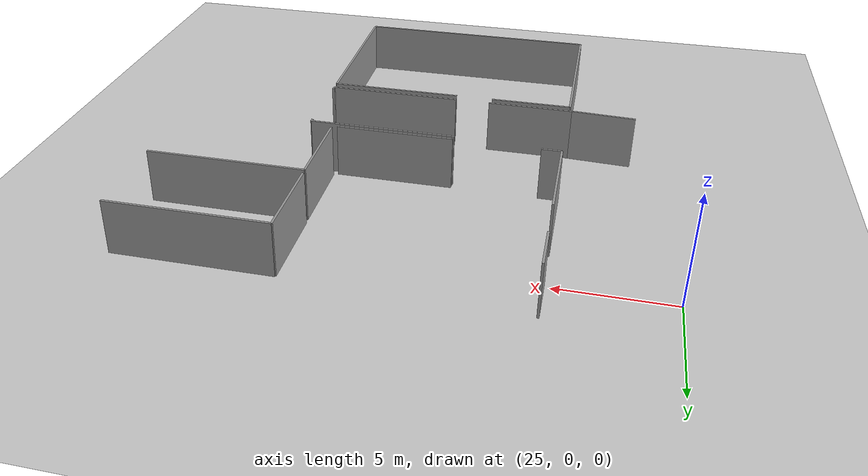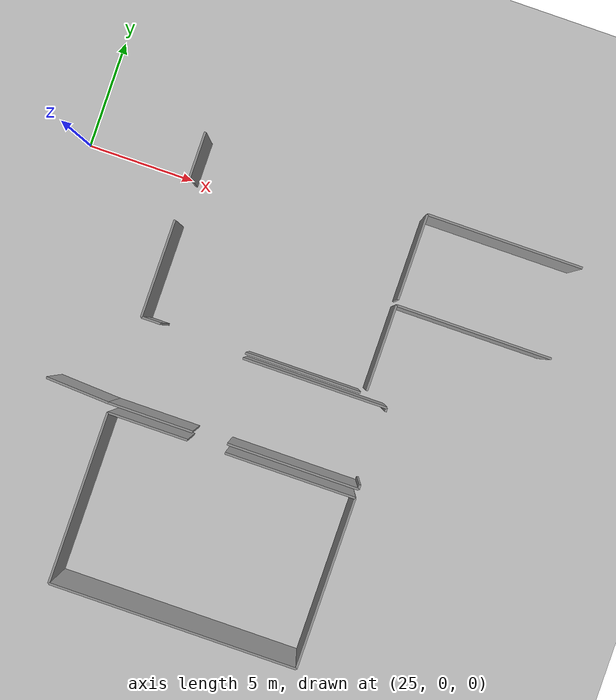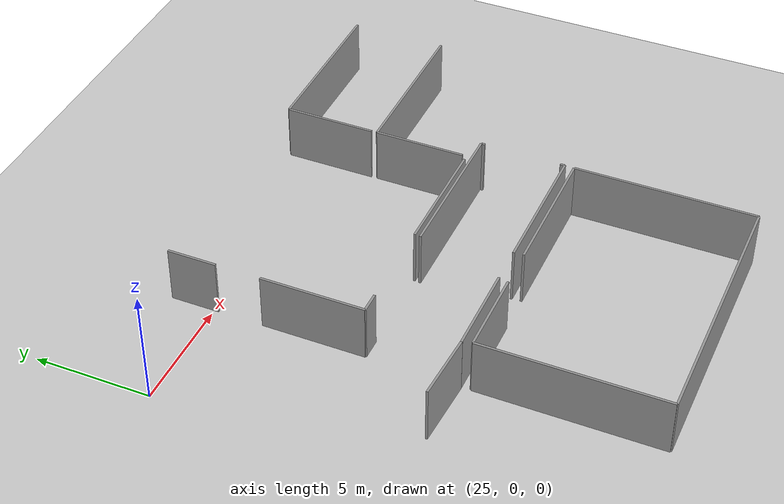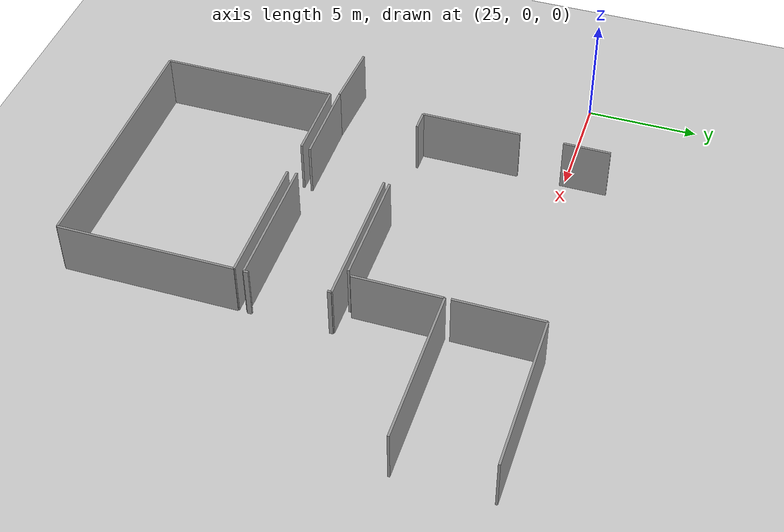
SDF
<sdf version="1.6">
 <world name="default">
  <model name="ground_plane">
   <static>1</static>
   <link name="link">
    <collision name="collision">
     <geometry><plane><normal>0 0 1</normal><size>100 100</size></plane></geometry>
     <surface><friction><ode><mu>100</mu><mu2>50</mu2></ode></friction></surface>
    </collision>
    <visual name="visual">
     <cast_shadows>0</cast_shadows>
     <geometry><plane><normal>0 0 1</normal><size>100 100</size></plane></geometry>
     <material>
      <script><uri>file://media/materials/scripts/gazebo.material</uri><name>Gazebo/Grey</name></script>
     </material>
    </visual>
   </link>
  </model>
  <model name="50041169">
   <static>1</static>
   <link name="Wall_86">
    <collision name="Wall_86_Collision">
     <geometry><box><size>6.07632056669 0.1 2.5</size></box></geometry>
     <pose>3.03816028335 0 1.25 0 0 0</pose>
    </collision>
    <visual name="Wall_86_Visual">
     <pose>3.03816028335 0 1.25 0 0 0</pose>
     <geometry><box><size>6.07632056669 0.1 2.5</size></box></geometry>
     <material>
      <script><uri>file://media/materials/scripts/gazebo.material</uri><name>Gazebo/Grey</name></script>
      <ambient>1 1 1 1</ambient>
     </material>
    </visual>
    <pose>113.197288411 -39.5480050271 0 0 0 3.14159265359</pose>
   </link>
   <link name="Wall_87">
    <collision name="Wall_87_Collision">
     <geometry><box><size>3.90679547561 0.1 2.5</size></box></geometry>
     <pose>1.9533977378 0 1.25 0 0 0</pose>
    </collision>
    <visual name="Wall_87_Visual">
     <pose>1.9533977378 0 1.25 0 0 0</pose>
     <geometry><box><size>3.90679547561 0.1 2.5</size></box></geometry>
     <material>
      <script><uri>file://media/materials/scripts/gazebo.material</uri><name>Gazebo/Grey</name></script>
      <ambient>1 1 1 1</ambient>
     </material>
    </visual>
    <pose>105.527528468 -39.5480050271 0 0 0 3.14159265359</pose>
   </link>
   <link name="Wall_88">
    <collision name="Wall_88_Collision">
     <geometry><box><size>2.92256812332 0.1 2.5</size></box></geometry>
     <pose>1.46128406166 0 1.25 0 0 0</pose>
    </collision>
    <visual name="Wall_88_Visual">
     <pose>1.46128406166 0 1.25 0 0 0</pose>
     <geometry><box><size>2.92256812332 0.1 2.5</size></box></geometry>
     <material>
      <script><uri>file://media/materials/scripts/gazebo.material</uri><name>Gazebo/Grey</name></script>
      <ambient>1 1 1 1</ambient>
     </material>
    </visual>
    <pose>101.620732992 -39.5480050271 0 0 0 3.0857038189</pose>
   </link>
   <link name="Wall_140">
    <collision name="Wall_140_Collision">
     <geometry><box><size>6.65418354005 0.1 2.5</size></box></geometry>
     <pose>3.32709177002 0 1.25 0 0 0</pose>
    </collision>
    <visual name="Wall_140_Visual">
     <pose>3.32709177002 0 1.25 0 0 0</pose>
     <geometry><box><size>6.65418354005 0.1 2.5</size></box></geometry>
     <material>
      <script><uri>file://media/materials/scripts/gazebo.material</uri><name>Gazebo/Grey</name></script>
      <ambient>1 1 1 1</ambient>
     </material>
    </visual>
    <pose>106.543104871 -35.7859291889 0 0 0 0.0</pose>
   </link>
   <link name="Wall_141">
    <collision name="Wall_141_Collision">
     <geometry><box><size>0.170109047516 0.1 2.5</size></box></geometry>
     <pose>0.0850545237581 0 1.25 0 0 0</pose>
    </collision>
    <visual name="Wall_141_Visual">
     <pose>0.0850545237581 0 1.25 0 0 0</pose>
     <geometry><box><size>0.170109047516 0.1 2.5</size></box></geometry>
     <material>
      <script><uri>file://media/materials/scripts/gazebo.material</uri><name>Gazebo/Grey</name></script>
      <ambient>1 1 1 1</ambient>
     </material>
    </visual>
    <pose>113.197288411 -35.7859291889 0 0 0 -1.57079632679</pose>
   </link>
   <link name="Wall_142">
    <collision name="Wall_142_Collision">
     <geometry><box><size>0.207812321481 0.1 2.5</size></box></geometry>
     <pose>0.10390616074 0 1.25 0 0 0</pose>
    </collision>
    <visual name="Wall_142_Visual">
     <pose>0.10390616074 0 1.25 0 0 0</pose>
     <geometry><box><size>0.207812321481 0.1 2.5</size></box></geometry>
     <material>
      <script><uri>file://media/materials/scripts/gazebo.material</uri><name>Gazebo/Grey</name></script>
      <ambient>1 1 1 1</ambient>
     </material>
    </visual>
    <pose>113.197288411 -39.3401927056 0 0 0 -1.57079632679</pose>
   </link>
   <link name="Wall_310">
    <collision name="Wall_310_Collision">
     <geometry><box><size>5.32162035215 0.1 2.5</size></box></geometry>
     <pose>2.66081017608 0 1.25 0 0 0</pose>
    </collision>
    <visual name="Wall_310_Visual">
     <pose>2.66081017608 0 1.25 0 0 0</pose>
     <geometry><box><size>5.32162035215 0.1 2.5</size></box></geometry>
     <material>
      <script><uri>file://media/materials/scripts/gazebo.material</uri><name>Gazebo/Grey</name></script>
      <ambient>1 1 1 1</ambient>
     </material>
    </visual>
    <pose>111.894811674 -35.5330506646 0 0 0 3.14159265359</pose>
   </link>
   <link name="Wall_311">
    <collision name="Wall_311_Collision">
     <geometry><box><size>0.892691658309 0.1 2.5</size></box></geometry>
     <pose>0.446345829155 0 1.25 0 0 0</pose>
    </collision>
    <visual name="Wall_311_Visual">
     <pose>0.446345829155 0 1.25 0 0 0</pose>
     <geometry><box><size>0.892691658309 0.1 2.5</size></box></geometry>
     <material>
      <script><uri>file://media/materials/scripts/gazebo.material</uri><name>Gazebo/Grey</name></script>
      <ambient>1 1 1 1</ambient>
     </material>
    </visual>
    <pose>102.657509553 -35.5330506646 0 0 0 3.14159265359</pose>
   </link>
   <link name="Wall_312">
    <collision name="Wall_312_Collision">
     <geometry><box><size>4.48986327803 0.1 2.5</size></box></geometry>
     <pose>2.24493163901 0 1.25 0 0 0</pose>
    </collision>
    <visual name="Wall_312_Visual">
     <pose>2.24493163901 0 1.25 0 0 0</pose>
     <geometry><box><size>4.48986327803 0.1 2.5</size></box></geometry>
     <material>
      <script><uri>file://media/materials/scripts/gazebo.material</uri><name>Gazebo/Grey</name></script>
      <ambient>1 1 1 1</ambient>
     </material>
    </visual>
    <pose>101.764817894 -35.5330506646 0 0 0 1.57079632679</pose>
   </link>
   <link name="Wall_313">
    <collision name="Wall_313_Collision">
     <geometry><box><size>2.11912711208 0.1 2.5</size></box></geometry>
     <pose>1.05956355604 0 1.25 0 0 0</pose>
    </collision>
    <visual name="Wall_313_Visual">
     <pose>1.05956355604 0 1.25 0 0 0</pose>
     <geometry><box><size>2.11912711208 0.1 2.5</size></box></geometry>
     <material>
      <script><uri>file://media/materials/scripts/gazebo.material</uri><name>Gazebo/Grey</name></script>
      <ambient>1 1 1 1</ambient>
     </material>
    </visual>
    <pose>101.764817894 -29.0946771102 0 0 0 1.57079632679</pose>
   </link>
   <link name="Wall_321">
    <collision name="Wall_321_Collision">
     <geometry><box><size>11.4506239448 0.1 2.5</size></box></geometry>
     <pose>5.72531197238 0 1.25 0 0 0</pose>
    </collision>
    <visual name="Wall_321_Visual">
     <pose>5.72531197238 0 1.25 0 0 0</pose>
     <geometry><box><size>11.4506239448 0.1 2.5</size></box></geometry>
     <material>
      <script><uri>file://media/materials/scripts/gazebo.material</uri><name>Gazebo/Grey</name></script>
      <ambient>1 1 1 1</ambient>
     </material>
    </visual>
    <pose>113.189671588 -47.8583397865 0 0 0 3.14159265359</pose>
   </link>
   <link name="Wall_322">
    <collision name="Wall_322_Collision">
     <geometry><box><size>7.89775684562 0.1 2.5</size></box></geometry>
     <pose>3.94887842281 0 1.25 0 0 0</pose>
    </collision>
    <visual name="Wall_322_Visual">
     <pose>3.94887842281 0 1.25 0 0 0</pose>
     <geometry><box><size>7.89775684562 0.1 2.5</size></box></geometry>
     <material>
      <script><uri>file://media/materials/scripts/gazebo.material</uri><name>Gazebo/Grey</name></script>
      <ambient>1 1 1 1</ambient>
     </material>
    </visual>
    <pose>101.739047643 -47.8583397865 0 0 0 1.57079632679</pose>
   </link>
   <link name="Wall_323">
    <collision name="Wall_323_Collision">
     <geometry><box><size>3.69568253082 0.1 2.5</size></box></geometry>
     <pose>1.84784126541 0 1.25 0 0 0</pose>
    </collision>
    <visual name="Wall_323_Visual">
     <pose>1.84784126541 0 1.25 0 0 0</pose>
     <geometry><box><size>3.69568253082 0.1 2.5</size></box></geometry>
     <material>
      <script><uri>file://media/materials/scripts/gazebo.material</uri><name>Gazebo/Grey</name></script>
      <ambient>1 1 1 1</ambient>
     </material>
    </visual>
    <pose>101.739047643 -39.9605829409 0 0 0 0.0</pose>
   </link>
   <link name="Wall_324">
    <collision name="Wall_324_Collision">
     <geometry><box><size>6.02769984639 0.1 2.5</size></box></geometry>
     <pose>3.0138499232 0 1.25 0 0 0</pose>
    </collision>
    <visual name="Wall_324_Visual">
     <pose>3.0138499232 0 1.25 0 0 0</pose>
     <geometry><box><size>6.02769984639 0.1 2.5</size></box></geometry>
     <material>
      <script><uri>file://media/materials/scripts/gazebo.material</uri><name>Gazebo/Grey</name></script>
      <ambient>1 1 1 1</ambient>
     </material>
    </visual>
    <pose>107.159432801 -39.9605829409 0 0 0 0.0</pose>
   </link>
   <link name="Wall_325">
    <collision name="Wall_325_Collision">
     <geometry><box><size>7.89775725372 0.1 2.5</size></box></geometry>
     <pose>3.94887862686 0 1.25 0 0 0</pose>
    </collision>
    <visual name="Wall_325_Visual">
     <pose>3.94887862686 0 1.25 0 0 0</pose>
     <geometry><box><size>7.89775725372 0.1 2.5</size></box></geometry>
     <material>
      <script><uri>file://media/materials/scripts/gazebo.material</uri><name>Gazebo/Grey</name></script>
      <ambient>1 1 1 1</ambient>
     </material>
    </visual>
    <pose>113.187132647 -39.9605829409 0 0 0 -1.57047485059</pose>
   </link>
   <link name="Wall_414">
    <collision name="Wall_414_Collision">
     <geometry><box><size>3.94056339101 0.1 2.5</size></box></geometry>
     <pose>1.9702816955 0 1.25 0 0 0</pose>
    </collision>
    <visual name="Wall_414_Visual">
     <pose>1.9702816955 0 1.25 0 0 0</pose>
     <geometry><box><size>3.94056339101 0.1 2.5</size></box></geometry>
     <material>
      <script><uri>file://media/materials/scripts/gazebo.material</uri><name>Gazebo/Grey</name></script>
      <ambient>1 1 1 1</ambient>
     </material>
    </visual>
    <pose>112.116969012 -31.1488073325 0 0 0 1.57079632679</pose>
   </link>
   <link name="Wall_415">
    <collision name="Wall_415_Collision">
     <geometry><box><size>7.16996940576 0.1 2.5</size></box></geometry>
     <pose>3.58498470288 0 1.25 0 0 0</pose>
    </collision>
    <visual name="Wall_415_Visual">
     <pose>3.58498470288 0 1.25 0 0 0</pose>
     <geometry><box><size>7.16996940576 0.1 2.5</size></box></geometry>
     <material>
      <script><uri>file://media/materials/scripts/gazebo.material</uri><name>Gazebo/Grey</name></script>
      <ambient>1 1 1 1</ambient>
     </material>
    </visual>
    <pose>112.116969012 -27.2082439415 0 0 0 0.0</pose>
   </link>
   <link name="Wall_419">
    <collision name="Wall_419_Collision">
     <geometry><box><size>3.9544006195 0.1 2.5</size></box></geometry>
     <pose>1.97720030975 0 1.25 0 0 0</pose>
    </collision>
    <visual name="Wall_419_Visual">
     <pose>1.97720030975 0 1.25 0 0 0</pose>
     <geometry><box><size>3.9544006195 0.1 2.5</size></box></geometry>
     <material>
      <script><uri>file://media/materials/scripts/gazebo.material</uri><name>Gazebo/Grey</name></script>
      <ambient>1 1 1 1</ambient>
     </material>
    </visual>
    <pose>112.133472129 -35.3584984703 0 0 0 1.57079632679</pose>
   </link>
   <link name="Wall_420">
    <collision name="Wall_420_Collision">
     <geometry><box><size>7.16489152375 0.1 2.5</size></box></geometry>
     <pose>3.58244576187 0 1.25 0 0 0</pose>
    </collision>
    <visual name="Wall_420_Visual">
     <pose>3.58244576187 0 1.25 0 0 0</pose>
     <geometry><box><size>7.16489152375 0.1 2.5</size></box></geometry>
     <material>
      <script><uri>file://media/materials/scripts/gazebo.material</uri><name>Gazebo/Grey</name></script>
      <ambient>1 1 1 1</ambient>
     </material>
    </visual>
    <pose>112.133472129 -31.4040978508 0 0 0 0.0</pose>
   </link>
   <pose>-71.5 28.8982938316 0 0 0 0</pose>
  </model>
 </world>
</sdf>
